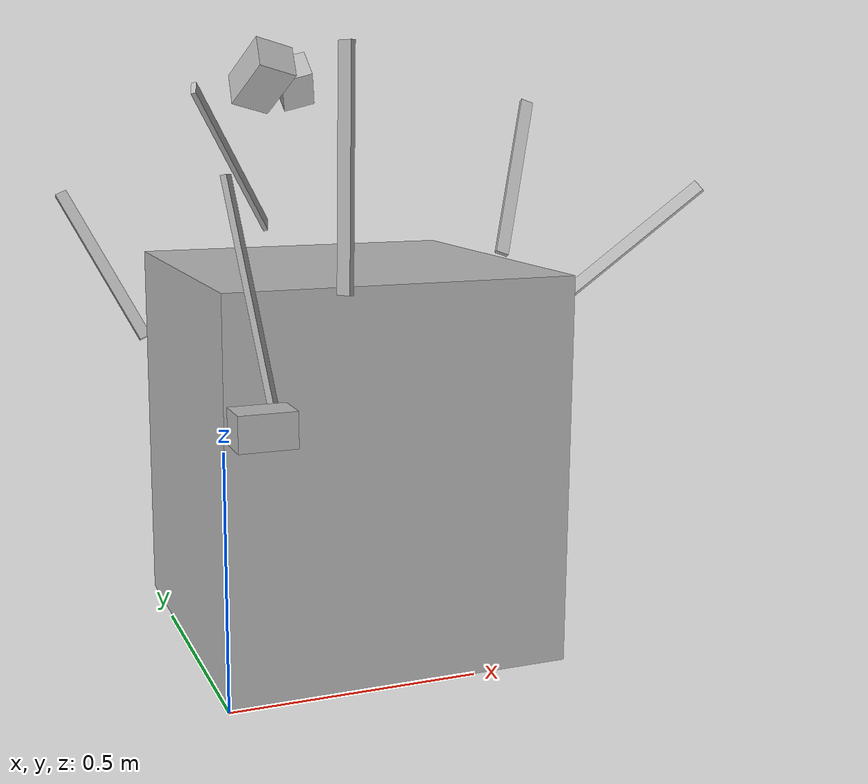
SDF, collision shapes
<?xml version="1.0" ?>
<sdf version="1.11">
  <model name="delta_robot_assembly_v16">
    <link name="base_link">
      <inertial>
        <mass>0.0001</mass>
        <inertia>
          <ixx>1e-09</ixx>
          <ixy>0</ixy>
          <ixz>0</ixz>
          <iyy>1e-09</iyy>
          <iyz>0</iyz>
          <izz>1e-09</izz>
        </inertia>
      </inertial>
    </link>
    <link name="base_link_1">
      <inertial>
        <pose>0.3494977966357621 0.34323612029842665 0.48192024839898784 0.0 -0.0 0.0</pose>
        <mass>71.18308896402955</mass>
        <inertia>
          <ixx>11.392706720580918</ixx>
          <ixy>0.004644725854163312</ixy>
          <ixz>-0.002840495777961749</ixz>
          <iyy>11.350934194321837</iyy>
          <iyz>0.11266229792209259</iyz>
          <izz>9.058901846022913</izz>
        </inertia>
      </inertial>
      <visual name="base_link_1__body1_visual">
        <geometry>
          <mesh>
            <scale>0.01 0.01 0.01</scale>
            <uri>meshes/base_link_1/body1_visual.obj</uri>
          </mesh>
        </geometry>
      </visual>
      <collision name="base_link_1__body1_collision">
        <pose relative_to="__model__">0.35000000000106474 0.3499999999987788 0.3939999999999999 -0.0 -1.5707963267948966 0</pose>
        <geometry>
          <box>
            <size>0.7879999999999998 0.6999999999999998 0.699999999998935</size>
          </box>
        </geometry>
      </collision>
    </link>
    <link name="slider_link1_1">
      <pose relative_to="__model__">0.3477463067993334 0.5392335667689264 0.5820342145958954 -0.7853981633982092 -1.776363001403638e-07 -3.1403043543892104</pose>
      <inertial>
        <pose>-0.00014872132188769043 0.0044751075768535604 -0.01298533257515384 -0.7853977483549703 -0.0009110905827150975 3.140681813844602</pose>
        <mass>0.8209317584742267</mass>
        <inertia>
          <ixx>0.00035848289552276036</ixx>
          <ixy>-7.997851128316302e-07</ixy>
          <ixz>9.36668507478533e-08</ixz>
          <iyy>0.000553101199670003</iyy>
          <iyz>-4.861529502825368e-05</iyz>
          <izz>0.0004692606138305133</izz>
        </inertia>
      </inertial>
      <visual name="slider_link1_1__body1_visual">
        <geometry>
          <mesh>
            <scale>0.01 0.01 0.01</scale>
            <uri>meshes/slider_link1_1/body1_visual.obj</uri>
          </mesh>
        </geometry>
      </visual>
      <collision name="slider_link1_1__body1_collision">
        <pose relative_to="__model__">0.34789046367004767 0.5437690624764057 0.577734002526898 1.5707965776037827 -0.7853981635487767 -1.569507850348317</pose>
        <geometry>
          <box>
            <size>0.061495309770750524 0.06700000000000314 0.09979999999999624</size>
          </box>
        </geometry>
      </collision>
    </link>
    <link name="slider_link2_1">
      <pose relative_to="__model__">0.5185275449896344 0.24520328805175834 0.5800881636962544 0.7853987670779257 0.0010988000647090485 -2.0920081801023565</pose>
      <inertial>
        <pose>0.00014872132188763036 -0.004475107576853821 -0.012985332575153968 0.4612282475770055 0.6606140638984151 2.253121651133508</pose>
        <mass>0.8209317584742297</mass>
        <inertia>
          <ixx>0.0005053696469196622</ixx>
          <ixy>-8.373668769166842e-05</ixy>
          <ixz>-4.223551223075939e-05</ixz>
          <iyy>0.00040621470886947897</iyy>
          <iyz>2.4074325194425872e-05</iyz>
          <izz>0.0004692603532344686</izz>
        </inertia>
      </inertial>
      <visual name="slider_link2_1__body1_visual">
        <geometry>
          <mesh>
            <scale>0.01 0.01 0.01</scale>
            <uri>meshes/slider_link2_1/body1_visual.obj</uri>
          </mesh>
        </geometry>
      </visual>
      <collision name="slider_link2_1__body1_collision">
        <pose relative_to="__model__">0.522388301147426 0.24281903069551464 0.5757877924128948 3.140038732273916 -0.7853982171733098 -0.5223106390844524</pose>
        <geometry>
          <box>
            <size>0.06700000000000302 0.0997999999999962 0.06149531053820287</size>
          </box>
        </geometry>
      </collision>
    </link>
    <link name="slider_link3_1">
      <pose relative_to="__model__">0.18015264615207627 0.24332753781928942 0.5801697197656981 0.7853981662086265 7.49840031017981e-05 2.0957582079679855</pose>
      <inertial>
        <pose>0.0001487213218875595 -0.004475107576853682 -0.012985332575153788 0.4646430412132996 -0.6584142666838909 -2.2570356913505947</pose>
        <mass>0.8209317584742297</mass>
        <inertia>
          <ixx>0.0005037381679205977</ixx>
          <ixy>8.46810726550587e-05</ixy>
          <ixz>4.204923338285704e-05</ixz>
          <iyy>0.0004078459328090145</iyy>
          <iyz>2.4399061651136922e-05</iyz>
          <izz>0.000469260608293956</izz>
        </inertia>
      </inertial>
      <visual name="slider_link3_1__body1_visual">
        <geometry>
          <mesh>
            <scale>0.01 0.01 0.01</scale>
            <uri>meshes/slider_link3_1/body1_visual.obj</uri>
          </mesh>
        </geometry>
      </visual>
      <collision name="slider_link3_1__body1_collision">
        <pose relative_to="__model__">0.17615303578925215 0.24118405622323183 0.5758694967460836 -3.141486627236058 -0.7853981040154782 0.5250368561466783</pose>
        <geometry>
          <box>
            <size>0.061495310538202765 0.0997999999999962 0.0670000000000029</size>
          </box>
        </geometry>
      </collision>
    </link>
    <link name="arm_link1a_1">
      <pose relative_to="__model__">0.30838449223170034 0.5483752527304638 0.5523357367760531 -0.14114658524603144 -0.3889611360162251 -1.2077397925189552</pose>
      <inertial>
        <pose>2.721619003775988e-08 -9.36081084867979e-09 -0.20000112474223394 0.4125453966222843 0.001828541472841311 1.2359685281508304</pose>
        <mass>0.11023344349296754</mass>
        <inertia>
          <ixx>0.0035444530129107726</ixx>
          <ixy>3.831038984890983e-06</ixy>
          <ixz>5.386249826730069e-06</ixz>
          <iyy>0.0029727721163059807</iyy>
          <iyz>-0.0012984565521613478</iyz>
          <izz>0.0005742369583242174</izz>
        </inertia>
      </inertial>
      <visual name="arm_link1a_1__body1_visual">
        <geometry>
          <mesh>
            <scale>0.01 0.01 0.01</scale>
            <uri>meshes/arm_link1a_1/body1_visual.obj</uri>
          </mesh>
        </geometry>
      </visual>
      <collision name="arm_link1a_1__body1_collision">
        <pose relative_to="__model__">0.30875020031837375 0.4681868927186715 0.36911539626710566 -1.901446163626464 -1.1582471104489258 1.575356908346833</pose>
        <geometry>
          <box>
            <size>0.4300000000000007 0.029999999999999895 0.010504818655834072</size>
          </box>
        </geometry>
      </collision>
    </link>
    <link name="arm_link1b_1">
      <pose relative_to="__model__">0.38738442667297507 0.5484770283391437 0.5523357227427985 -0.05439819700864759 0.4092556479311123 1.4393615835880544</pose>
      <inertial>
        <pose>2.7216190079393243e-08 -9.360810945824305e-09 -0.20000112474223394 0.41264885895727055 0.0018286364853245158 -1.450270907617057</pose>
        <mass>0.11023344349296754</mass>
        <inertia>
          <ixx>0.003544859848691094</ixx>
          <ixy>2.1195007615659733e-06</ixy>
          <ixz>6.136125404353904e-06</ixz>
          <iyy>0.002972158655272575</iyy>
          <iyz>-0.0012985583111657477</iyz>
          <izz>0.0005744435835772776</izz>
        </inertia>
      </inertial>
      <visual name="arm_link1b_1__body1_visual">
        <geometry>
          <mesh>
            <scale>0.01 0.01 0.01</scale>
            <uri>meshes/arm_link1b_1/body1_visual.obj</uri>
          </mesh>
        </geometry>
      </visual>
      <collision name="arm_link1b_1__body1_collision">
        <pose relative_to="__model__">0.3877501537643178 0.4682697123425562 0.36912367973165133 -1.446093905406477 -1.1581436486589791 1.5753560673600941</pose>
        <geometry>
          <box>
            <size>0.4300000000000007 0.029999999999999888 0.010504818655834212</size>
          </box>
        </geometry>
      </collision>
    </link>
    <link name="arm_link2a_1">
      <pose relative_to="__model__">0.5461091892391119 0.27477934372614 0.5504329401372772 -0.1976250605857181 -0.3779904617390926 3.099878051706771</pose>
      <inertial>
        <pose>2.721619016786414e-08 -9.360810897252048e-09 -0.20000112474223397 -0.22779580989607934 -0.3611683252178382 -3.0201936406832974</pose>
        <mass>0.11023344349296754</mass>
        <inertia>
          <ixx>0.003099275220237209</ixx>
          <ixy>0.0002643521642963498</ixy>
          <ixz>-0.0011381704502926443</ixz>
          <iyy>0.003386978278542646</iyy>
          <iyz>0.000681286006732099</iyz>
          <izz>0.0006052085887610983</izz>
        </inertia>
      </inertial>
      <visual name="arm_link2a_1__body1_visual">
        <geometry>
          <mesh>
            <scale>0.01 0.01 0.01</scale>
            <uri>meshes/arm_link2a_1/body1_visual.obj</uri>
          </mesh>
        </geometry>
      </visual>
      <collision name="arm_link2a_1__body1_collision">
        <pose relative_to="__model__">0.47543570435896354 0.31703159628160255 0.36816937908108294 2.68238931001389 -1.1464736667498272 -0.5388382609130798</pose>
        <geometry>
          <box>
            <size>0.4300000000000005 0.010504818655834074 0.029999999999999968</size>
          </box>
        </geometry>
      </collision>
    </link>
    <link name="arm_link2b_1">
      <pose relative_to="__model__">0.506772629046244 0.2062692897409568 0.5503461349496459 0.23711455528537886 0.35569210473033525 0.06782873153114712</pose>
      <inertial>
        <pose>2.721619007245435e-08 -9.360810821791576e-09 -0.20000112474223386 -0.22799164484556542 -0.3614573043683242 0.016820206779699216</pose>
        <mass>0.11023344349296754</mass>
        <inertia>
          <ixx>0.0030985442212858004</ixx>
          <ixy>0.0002643340760078664</ixy>
          <ixz>-0.00113894067495229</ixz>
          <iyy>0.003386734622982328</iyy>
          <iyz>0.0006818405097690442</iyz>
          <izz>0.0006061832432728322</izz>
        </inertia>
      </inertial>
      <visual name="arm_link2b_1__body1_visual">
        <geometry>
          <mesh>
            <scale>0.01 0.01 0.01</scale>
            <uri>meshes/arm_link2b_1/body1_visual.obj</uri>
          </mesh>
        </geometry>
      </visual>
      <collision name="arm_link2b_1__body1_collision">
        <pose relative_to="__model__">0.43604507998316316 0.248552617219786 0.36811075413448224 2.577753115640901 -1.1461315568307928 -0.5388252678263082</pose>
        <geometry>
          <box>
            <size>0.4300000000000007 0.010504818655834143 0.029999999999999895</size>
          </box>
        </geometry>
      </collision>
    </link>
    <link name="arm_link3a_1">
      <pose relative_to="__model__">0.1919206263913016 0.20466732118923553 0.5504741856856671 0.00865356456295046 -0.4237619404340731 0.5300694226226548</pose>
      <inertial>
        <pose>2.7216190121026607e-08 -9.360810805311703e-09 -0.20000112474223392 -0.23200564003090762 0.35797358061999773 -0.5740891020688857</pose>
        <mass>0.11023344349296764</mass>
        <inertia>
          <ixx>0.003107783527760359</ixx>
          <ixy>-0.00026861190142091294</ixy>
          <ixz>0.001128853560432061</ixz>
          <iyy>0.003379881059800343</iyy>
          <iyz>0.0006938747111514352</iyz>
          <izz>0.0006037974999802843</izz>
        </inertia>
      </inertial>
      <visual name="arm_link3a_1__body1_visual">
        <geometry>
          <mesh>
            <scale>0.01 0.01 0.01</scale>
            <uri>meshes/arm_link3a_1/body1_visual.obj</uri>
          </mesh>
        </geometry>
      </visual>
      <collision name="arm_link3a_1__body1_collision">
        <pose relative_to="__model__">0.2619960247460674 0.24773819049943677 0.3681713092347326 0.019180985718082074 -1.1469513914183915 -2.5904807694874044</pose>
        <geometry>
          <box>
            <size>0.43000000000000066 0.010504818655834152 0.029999999999999933</size>
          </box>
        </geometry>
      </collision>
    </link>
    <link name="arm_link3b_1">
      <pose relative_to="__model__">0.1523274049877075 0.2730294216820944 0.5504682619494409 -0.011000300728553519 0.423830975455088 -2.6172306092437934</pose>
      <inertial>
        <pose>2.7216190079393243e-08 -9.360810830898875e-09 -0.20000112474223386 -0.23207477962056164 0.3580747932119474 2.5726808637176988</pose>
        <mass>0.11023344349296764</mass>
        <inertia>
          <ixx>0.0031075298313974174</ixx>
          <ixy>-0.0002687421806293021</ixy>
          <ixz>0.0011290941066193615</ixz>
          <iyy>0.003379815394284804</iyy>
          <iyz>0.000694021921686867</iyz>
          <izz>0.0006041168618587493</izz>
        </inertia>
      </inertial>
      <visual name="arm_link3b_1__body1_visual">
        <geometry>
          <mesh>
            <scale>0.01 0.01 0.01</scale>
            <uri>meshes/arm_link3b_1/body1_visual.obj</uri>
          </mesh>
        </geometry>
      </visual>
      <collision name="arm_link3b_1__body1_collision">
        <pose relative_to="__model__">0.22242176232479732 0.3161112637685719 0.3681752671527774 0.024376107076062595 -1.146831271031724 -2.590487811846181</pose>
        <geometry>
          <box>
            <size>0.4300000000000007 0.01050481865583416 0.03</size>
          </box>
        </geometry>
      </collision>
    </link>
    <link name="ee_plate_link_1">
      <pose relative_to="__model__">0.34864985032981727 0.34603048044864915 0.18588976886766134 0.00032327082232738567 -0.00020988517710201503 0.0008084011727857491</pose>
      <inertial>
        <pose>1.6974584308689436e-13 3.854564372763117e-14 -5.706698134877453e-16 -0.0003234403952065604 0.00020962376506917957 -0.0008084689980601959</pose>
        <mass>0.6272585071431402</mass>
        <inertia>
          <ixx>0.0005722425691133265</ixx>
          <ixy>-1.3342758869994142e-08</ixy>
          <ixz>-1.1640851912270156e-07</ixz>
          <iyy>0.0005722579464824407</iyy>
          <iyz>-1.7960437568437237e-07</iyz>
          <izz>0.0011275427814847472</izz>
        </inertia>
      </inertial>
      <visual name="ee_plate_link_1__body1_visual">
        <geometry>
          <mesh>
            <scale>0.01 0.01 0.01</scale>
            <uri>meshes/ee_plate_link_1/body1_visual.obj</uri>
          </mesh>
        </geometry>
      </visual>
      <collision name="ee_plate_link_1__body1_collision">
        <pose relative_to="__model__">0.3551418954522911 0.3497856653215052 0.18589234433411517 0.4713460399089099 -1.5704108973498874 -2.1458394029004375</pose>
        <geometry>
          <box>
            <size>0.01899061951096197 0.13123675342886007 0.1179903621600309</size>
          </box>
        </geometry>
      </collision>
    </link>
    <link name="vaccum_ee_link_1">
      <pose relative_to="__model__">0.3486557197951964 0.34603953677935884 0.15788977094744092 0.0003232708134687509 -0.00020988517723647966 0.0008084011727857056</pose>
      <inertial>
        <pose>3.8916223352560356e-13 -2.4844425019869554e-13 0.028426611618866882 -0.00032344038634803704 0.0002096237652108061 -0.000808468998058339</pose>
        <mass>0.04578045780892627</mass>
        <inertia>
          <ixx>1.663060602253609e-05</ixx>
          <ixy>-1.4208060075682205e-11</ixy>
          <ixz>3.260006739384813e-09</ixz>
          <iyy>1.664687488031613e-05</iyy>
          <iyz>5.035315000893881e-09</iyz>
          <izz>1.0788842861216008e-06</izz>
        </inertia>
      </inertial>
      <visual name="vaccum_ee_link_1__body1_visual">
        <geometry>
          <mesh>
            <scale>0.01 0.01 0.01</scale>
            <uri>meshes/vaccum_ee_link_1/body1_visual.obj</uri>
          </mesh>
        </geometry>
      </visual>
      <collision name="vaccum_ee_link_1__body1_collision">
        <pose relative_to="__model__">0.3486484857670921 0.3460283780837965 0.192389768392251 0.9957557714581319 -1.5704108978935092 -2.1458369160319046</pose>
        <geometry>
          <box>
            <size>0.0689999999909755 0.025000000000000074 0.024999995914861874</size>
          </box>
        </geometry>
      </collision>
    </link>
    <joint name="slider_link1_joint" type="prismatic">
      <pose relative_to="__model__">0.34776307542506724 0.5262156832676276 0.5690163202945615 0.0 -0.0 0.0</pose>
      <parent>base_link_1</parent>
      <child>slider_link1_1</child>
      <axis>
        <xyz expressed_in="__model__">0.0009108392412098171 -0.7071061945501054 -0.7071067811870746</xyz>
        <limit>
          <lower>-0.05</lower>
          <upper>0.05</upper>
        </limit>
      </axis>
    </joint>
    <joint name="slider_link2_joint" type="prismatic">
      <pose relative_to="__model__">0.5089318971383543 0.25072686967881525 0.5690162888922229 0.0 -0.0 0.0</pose>
      <parent>base_link_1</parent>
      <child>slider_link2_1</child>
      <axis>
        <xyz expressed_in="__model__">-0.6128273472747638 0.35276428735485094 -0.7071067811859821</xyz>
        <limit>
          <lower>-0.05</lower>
          <upper>0.05</upper>
        </limit>
      </axis>
    </joint>
    <joint name="slider_link3_joint" type="prismatic">
      <pose relative_to="__model__">0.18978587858431126 0.24890584451269063 0.5690379331768775 0.0 -0.0 0.0</pose>
      <parent>base_link_1</parent>
      <child>slider_link3_1</child>
      <axis>
        <xyz expressed_in="__model__">0.6119165080311094 0.35434190720141434 -0.707106781186461</xyz>
        <limit>
          <lower>-0.05</lower>
          <upper>0.05</upper>
        </limit>
      </axis>
    </joint>
    <joint name="arm1a_ball_joint" type="fixed">
      <pose relative_to="__model__">0.30838449223170045 0.5483752527304643 0.5523357367760533 0.0 -0.0 0.0</pose>
      <parent>slider_link1_1</parent>
      <child>arm_link1a_1</child>
      <axis/>
    </joint>
    <joint name="arm1b_ball_joint" type="fixed">
      <pose relative_to="__model__">0.3873844266729748 0.548477028339144 0.5523357227427986 0.0 -0.0 0.0</pose>
      <parent>slider_link1_1</parent>
      <child>arm_link1b_1</child>
      <axis/>
    </joint>
    <joint name="arm2a_ball_joint" type="fixed">
      <pose relative_to="__model__">0.546109189239112 0.27477934372613966 0.5504329401372773 0.0 -0.0 0.0</pose>
      <parent>slider_link2_1</parent>
      <child>arm_link2a_1</child>
      <axis/>
    </joint>
    <joint name="arm2b_ball_joint" type="fixed">
      <pose relative_to="__model__">0.5067726290462443 0.20626928974095685 0.550346134949646 0.0 -0.0 0.0</pose>
      <parent>slider_link2_1</parent>
      <child>arm_link2b_1</child>
      <axis/>
    </joint>
    <joint name="arm3a_ball_joint" type="fixed">
      <pose relative_to="__model__">0.19192062639130153 0.20466732118923567 0.550474185685667 0.0 -0.0 0.0</pose>
      <parent>slider_link3_1</parent>
      <child>arm_link3a_1</child>
      <axis/>
    </joint>
    <joint name="arm3b_ball_joint" type="fixed">
      <pose relative_to="__model__">0.15232740498770758 0.2730294216820943 0.5504682619494409 0.0 -0.0 0.0</pose>
      <parent>slider_link3_1</parent>
      <child>arm_link3b_1</child>
      <axis/>
    </joint>
    <joint name="ee1a_ball_joint" type="fixed">
      <pose relative_to="__model__">0.30911590841324715 0.3879985326836466 0.18589505576834242 0.0 -0.0 0.0</pose>
      <parent>arm_link1a_1</parent>
      <child>ee_plate_link_1</child>
      <axis/>
    </joint>
    <joint name="vaccum_joint" type="fixed">
      <pose relative_to="__model__">0.3486498503298174 0.34603048044864915 0.18588976886766134 0.0 -0.0 0.0</pose>
      <parent>ee_plate_link_1</parent>
      <child>vaccum_ee_link_1</child>
      <axis/>
    </joint>
    <joint name="ee1b_ball_joint" type="fixed">
      <pose relative_to="__model__">0.3881158808594517 0.38806239637014506 0.18591163670992747 0.0 -0.0 0.0</pose>
      <parent>ee_plate_link_1</parent>
      <child>arm_link1b_1</child>
      <axis/>
    </joint>
    <joint name="ee2b_ball_joint" type="fixed">
      <pose relative_to="__model__">0.29251612468567384 0.3591931089442572 0.18588225922442714 0.0 -0.0 0.0</pose>
      <parent>ee_plate_link_1</parent>
      <child>arm_link3b_1</child>
      <axis/>
    </joint>
    <joint name="ee3b_ball_joint" type="fixed">
      <pose relative_to="__model__">0.3653175454443307 0.2908359360315408 0.18587541066862948 0.0 -0.0 0.0</pose>
      <parent>ee_plate_link_1</parent>
      <child>arm_link2b_1</child>
      <axis/>
    </joint>
    <joint name="ball_32" type="fixed">
      <pose relative_to="__model__">0.40476221945413227 0.3592838488386749 0.18590581803483308 0.0 -0.0 0.0</pose>
      <parent>ee_plate_link_1</parent>
      <child>arm_link2a_1</child>
      <axis/>
    </joint>
    <joint name="ball_33" type="fixed">
      <pose relative_to="__model__">0.3320714231220952 0.29080905982141286 0.18586843279475324 0.0 -0.0 0.0</pose>
      <parent>ee_plate_link_1</parent>
      <child>arm_link3a_1</child>
      <axis/>
    </joint>
    <joint name="base_link_joint" type="fixed">
      <parent>base_link</parent>
      <child>base_link_1</child>
      <axis/>
    </joint>
  </model>
</sdf>
